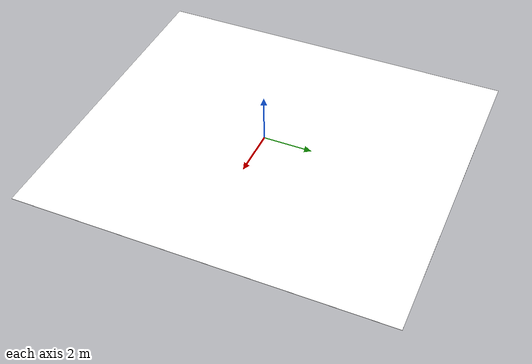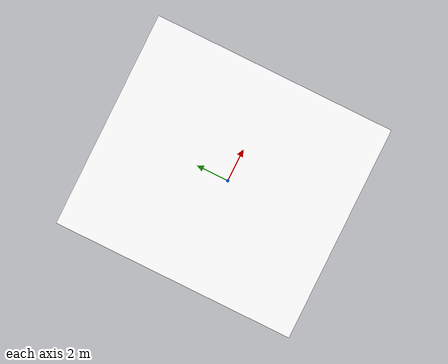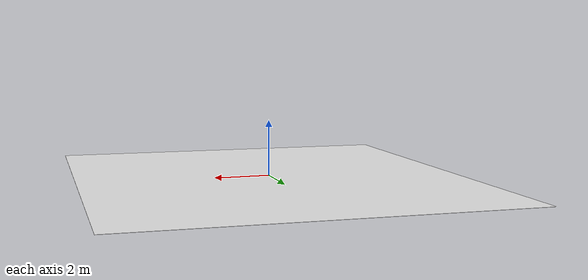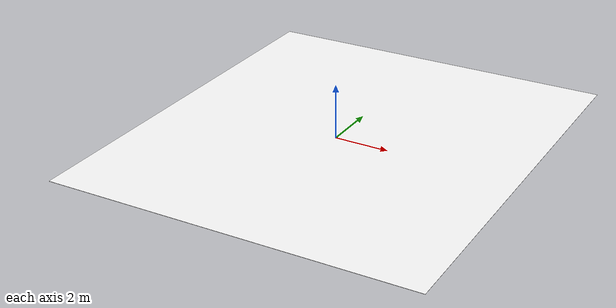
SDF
<?xml version='1.0'?>
<sdf version='1.7'>
  <model name='Floor_white'>
    <link name='main'>
      <pose>0.106276 0.320284 0.01 0 -0 0</pose>
      <self_collide>0</self_collide>
      <enable_wind>0</enable_wind>
      <kinematic>0</kinematic>
      <gravity>1</gravity>
      <inertial>
        <mass>0.126387</mass>
        <pose>0 0 0 0 -0 0</pose>
        <inertia>
          <ixx>2.38743</ixx>
          <ixy>0</ixy>
          <ixz>0</ixz>
          <iyy>1.90008</iyy>
          <iyz>0</iyz>
          <izz>4.28751</izz>
        </inertia>
      </inertial>
      <visual name='main_Visual'>
        <geometry>
          <box>
            <size>13.4315 15.0558 0.01</size>
          </box>
        </geometry>
        <material>
          <script>
            <uri>model://Floor/materials/scripts</uri>
            <uri>model://Floor/materials/textures</uri>
            <name>floor</name>
          </script>
          <shader type='pixel'>
            <normal_map>__default__</normal_map>
          </shader>
          <ambient>1 1 1 1</ambient>
          <diffuse>1 1 1 1</diffuse>
          <specular>0 0 0 1</specular>
          <emissive>0.94 0.94 0.94 0.9</emissive>
        </material>
        <pose>0 0 0 0 -0 0</pose>
        <transparency>0</transparency>
        <cast_shadows>1</cast_shadows>
      </visual>
      <collision name='main_Collision'>
        <laser_retro>0</laser_retro>
        <max_contacts>10</max_contacts>
        <pose>0 0 0 0 -0 0</pose>
        <geometry>
          <box>
            <size>13.4315 15.0558 0.01</size>
          </box>
        </geometry>
        <surface>
          <friction>
            <ode>
              <mu>1</mu>
              <mu2>1</mu2>
              <fdir1>0 0 0</fdir1>
              <slip1>0</slip1>
              <slip2>0</slip2>
            </ode>
            <torsional>
              <coefficient>1</coefficient>
              <patch_radius>0</patch_radius>
              <surface_radius>0</surface_radius>
              <use_patch_radius>1</use_patch_radius>
              <ode>
                <slip>0</slip>
              </ode>
            </torsional>
          </friction>
          <bounce>
            <restitution_coefficient>0</restitution_coefficient>
            <threshold>1e+06</threshold>
          </bounce>
          <contact>
            <collide_without_contact>0</collide_without_contact>
            <collide_without_contact_bitmask>1</collide_without_contact_bitmask>
            <collide_bitmask>1</collide_bitmask>
            <ode>
              <soft_cfm>0</soft_cfm>
              <soft_erp>0.2</soft_erp>
              <kp>1e+13</kp>
              <kd>1</kd>
              <max_vel>0.01</max_vel>
              <min_depth>0</min_depth>
            </ode>
            <bullet>
              <split_impulse>1</split_impulse>
              <split_impulse_penetration_threshold>-0.01</split_impulse_penetration_threshold>
              <soft_cfm>0</soft_cfm>
              <soft_erp>0.2</soft_erp>
              <kp>1e+13</kp>
              <kd>1</kd>
            </bullet>
          </contact>
        </surface>
      </collision>
    </link>
    <static>1</static>
    <allow_auto_disable>1</allow_auto_disable>
  </model>
</sdf>
